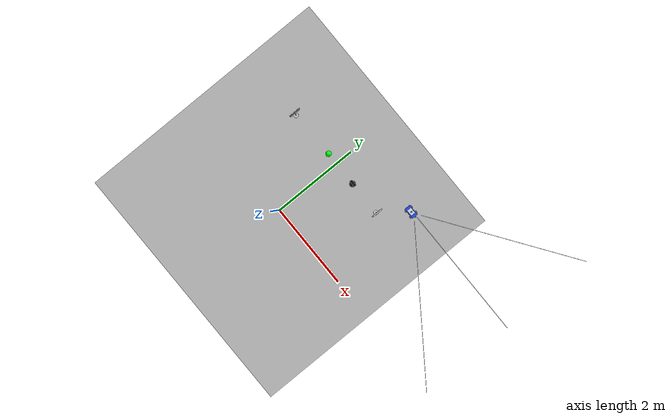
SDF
<sdf version="1.7">
 <world name="autonomous_map_3d_world">
  <model name="autonomous_map_3d">
   <static>1</static>
   <link name="map_link">
    <visual name="textured_map_visual">
     <geometry>
      <mesh><uri>model://autonomous_map_3d/meshes/autonomous_map_3d.dae</uri><scale>-1.0 1.0 1.0</scale></mesh>
     </geometry>
    </visual>
    <collision name="floor_collision">
     <pose>0 0 -0.01 0 -0 0</pose>
     <geometry><box><size>6 6 0.02</size></box></geometry>
    </collision>
   </link>
   <pose>0 0.3 0 0 -0 0</pose>
  </model>
  <model name="traffic_light_top_island">
   <static>1</static>
   <link name="traffic_light_link">
    <visual name="base_visual">
     <pose>0 0 0.015 0 -0 0</pose>
     <geometry><cylinder><radius>0.07</radius><length>0.03</length></cylinder></geometry>
     <material><ambient>0.03 0.03 0.04 1</ambient><diffuse>0.04 0.04 0.05 1</diffuse></material>
    </visual>
    <visual name="pole_visual">
     <pose>0 0 0.25 0 -0 0</pose>
     <geometry><cylinder><radius>0.016</radius><length>0.47</length></cylinder></geometry>
     <material><ambient>0.08 0.08 0.1 1</ambient><diffuse>0.1 0.1 0.13 1</diffuse></material>
    </visual>
    <visual name="housing_visual">
     <pose>0 -0.006 0.565 0 -0 0</pose>
     <geometry><box><size>0.145 0.055 0.34</size></box></geometry>
     <material><ambient>0.02 0.025 0.04 1</ambient><diffuse>0.03 0.035 0.06 1</diffuse></material>
    </visual>
    <visual name="red_lens_visual">
     <pose>0 -0.038 0.66 0 -0 0</pose>
     <geometry><sphere><radius>0.043</radius></sphere></geometry>
     <material>
      <ambient>0.035 0.002 0.002 1</ambient>
      <diffuse>0.06 0.004 0.004 1</diffuse>
      <emissive>0 0 0 1</emissive>
     </material>
    </visual>
    <visual name="yellow_lens_visual">
     <pose>0 -0.038 0.565 0 -0 0</pose>
     <geometry><sphere><radius>0.043</radius></sphere></geometry>
     <material>
      <ambient>0.035 0.025 0.002 1</ambient>
      <diffuse>0.06 0.045 0.004 1</diffuse>
      <emissive>0 0 0 1</emissive>
     </material>
    </visual>
    <visual name="green_lens_visual">
     <pose>0 -0.038 0.47 0 -0 0</pose>
     <geometry><sphere><radius>0.043</radius></sphere></geometry>
     <material>
      <ambient>0.002 0.04 0.004 1</ambient>
      <diffuse>0.004 0.078 0.01 1</diffuse>
      <emissive>0 0 0 1</emissive>
     </material>
    </visual>
   </link>
   <pose>0.562500 1.589100 0.000000 0.000000 -0.000000 -0.000003</pose>
  </model>
  <model name="traffic_light_top_island_green_active_lamp">
   <static>0</static>
   <link name="lamp_link">
    <gravity>0</gravity>
    <visual name="lamp_visual">
     <geometry><sphere><radius>0.065</radius></sphere></geometry>
     <material>
      <ambient>0 1 0.05 1</ambient>
      <diffuse>0 1 0.05 1</diffuse>
      <emissive>0 0.0313726 0.3 1</emissive>
     </material>
    </visual>
    <kinematic>1</kinematic>
    <inertial>
     <inertia><ixx>1</ixx><ixy>0</ixy><ixz>0</ixz><iyy>1</iyy><iyz>0</iyz><izz>1</izz></inertia>
     <mass>1</mass>
    </inertial>
   </link>
   <pose>-0.241400 1.589700 0.470000 0.000000 -0.000000 3.141593</pose>
  </model>
  <model name="sign_go_straight_top_island">
   <static>1</static>
   <link name="sign_link">
    <visual name="base_visual">
     <pose>0 0 0.01 0 -0 0</pose>
     <geometry><cylinder><radius>0.055</radius><length>0.02</length></cylinder></geometry>
     <material><ambient>0.72 0.72 0.7 1</ambient><diffuse>0.78 0.78 0.76 1</diffuse></material>
    </visual>
    <visual name="pole_visual">
     <pose>0 0 0.245 0 -0 0</pose>
     <geometry><cylinder><radius>0.011</radius><length>0.47</length></cylinder></geometry>
     <material><ambient>0.72 0.72 0.7 1</ambient><diffuse>0.82 0.82 0.8 1</diffuse></material>
    </visual>
    <visual name="back_plate_visual">
     <pose>0 0 0.52 0 -0 0</pose>
     <geometry><box><size>0.26 0.014 0.26</size></box></geometry>
     <material><ambient>0.96 0.96 0.94 1</ambient><diffuse>0.98 0.98 0.96 1</diffuse></material>
    </visual>
    <visual name="sign_face_visual">
     <pose>0 -0.011 0.52 0 -0 0</pose>
     <geometry><box><size>0.246 0.004 0.246</size></box></geometry>
     <material>
      <script>
       <uri>model://road_sign_go_straight/materials/scripts</uri>
       <uri>model://road_sign_go_straight/materials/textures</uri>
       <name>RoadSign/GoStraight</name>
      </script>
     </material>
    </visual>
   </link>
   <pose>1.359400 1.589100 0.000000 0.000000 -0.000000 1.570793</pose>
  </model>
  <model name="sign_turn_right_top_right_island">
   <static>1</static>
   <link name="sign_link">
    <visual name="base_visual">
     <pose>0 0 0.01 0 -0 0</pose>
     <geometry><cylinder><radius>0.055</radius><length>0.02</length></cylinder></geometry>
     <material><ambient>0.72 0.72 0.7 1</ambient><diffuse>0.78 0.78 0.76 1</diffuse></material>
    </visual>
    <visual name="pole_visual">
     <pose>0 0 0.245 0 -0 0</pose>
     <geometry><cylinder><radius>0.011</radius><length>0.47</length></cylinder></geometry>
     <material><ambient>0.72 0.72 0.7 1</ambient><diffuse>0.82 0.82 0.8 1</diffuse></material>
    </visual>
    <visual name="back_plate_visual">
     <pose>0 0 0.52 0 -0 0</pose>
     <geometry><box><size>0.26 0.014 0.26</size></box></geometry>
     <material><ambient>0.96 0.96 0.94 1</ambient><diffuse>0.98 0.98 0.96 1</diffuse></material>
    </visual>
    <visual name="sign_face_visual">
     <pose>0 -0.011 0.52 0 -0 0</pose>
     <geometry><box><size>0.246 0.004 0.246</size></box></geometry>
     <material>
      <script>
       <uri>model://road_sign_turn_right/materials/scripts</uri>
       <uri>model://road_sign_turn_right/materials/textures</uri>
       <name>RoadSign/TurnRight</name>
      </script>
     </material>
    </visual>
   </link>
   <pose>-1.359400 1.589100 0.000000 0.000000 -0.000000 1.570793</pose>
  </model>
  <model name="track_preview_car">
   <static>0</static>
   <allow_auto_disable>0</allow_auto_disable>
   <link name="body">
    <inertial>
     <mass>1</mass>
     <inertia><ixx>0.01</ixx><iyy>0.01</iyy><izz>0.01</izz><ixy>0</ixy><ixz>0</ixz><iyz>0</iyz></inertia>
    </inertial>
    <visual name="chassis_visual">
     <pose>0 0 0.065 0 -0 0</pose>
     <geometry><box><size>0.26 0.14 0.055</size></box></geometry>
     <material>
      <ambient>0.08 0.2 0.7 1</ambient>
      <diffuse>0.12 0.28 0.88 1</diffuse>
      <specular>0.1 0.1 0.1 1</specular>
     </material>
    </visual>
    <visual name="roof_visual">
     <pose>-0.005 0 0.115 0 -0 0</pose>
     <geometry><box><size>0.14 0.105 0.045</size></box></geometry>
     <material>
      <ambient>0.65 0.78 0.95 0.92</ambient>
      <diffuse>0.75 0.86 0.98 0.92</diffuse>
      <specular>0.1 0.1 0.1 1</specular>
     </material>
    </visual>
    <visual name="front_marker_visual">
     <pose>0.105 0 0.083 0 -0 0</pose>
     <geometry><box><size>0.025 0.075 0.018</size></box></geometry>
     <material>
      <ambient>1 0.85 0.2 1</ambient>
      <diffuse>1 0.88 0.25 1</diffuse>
      <specular>0.05 0.05 0.05 1</specular>
     </material>
    </visual>
    <visual name="camera_lens_visual">
     <pose>0.138 0 0.126 0 -0 0</pose>
     <geometry><box><size>0.016 0.04 0.022</size></box></geometry>
     <material>
      <ambient>0.02 0.02 0.025 1</ambient>
      <diffuse>0.04 0.04 0.05 1</diffuse>
      <specular>0.05 0.05 0.05 1</specular>
     </material>
    </visual>
    <visual name="camera_view_left_ray_visual">
     <pose>1.67 1.15 0.335 -0 0.0505 0.6109</pose>
     <geometry><box><size>3.68 0.008 0.008</size></box></geometry>
     <material>
      <ambient>0.85 1 1 0.82</ambient>
      <diffuse>0.85 1 1 0.82</diffuse>
      <emissive>0.2 0.55 0.75 1</emissive>
     </material>
    </visual>
    <visual name="camera_view_center_ray_visual">
     <pose>1.67 0 0.335 0 0.0555 0</pose>
     <geometry><box><size>3.0647 0.008 0.008</size></box></geometry>
     <material>
      <ambient>0.85 1 1 0.82</ambient>
      <diffuse>0.85 1 1 0.82</diffuse>
      <emissive>0.2 0.55 0.75 1</emissive>
     </material>
    </visual>
    <visual name="camera_view_right_ray_visual">
     <pose>1.67 -1.15 0.335 0 0.0505 -0.6109</pose>
     <geometry><box><size>3.68 0.008 0.008</size></box></geometry>
     <material>
      <ambient>0.85 1 1 0.82</ambient>
      <diffuse>0.85 1 1 0.82</diffuse>
      <emissive>0.2 0.55 0.75 1</emissive>
     </material>
    </visual>
    <visual name="debug_origin_marker_visual">
     <pose>0 0 0.165 0 -0 0</pose>
     <geometry><sphere><radius>0.018</radius></sphere></geometry>
     <material>
      <ambient>1 0.02 0.02 1</ambient>
      <diffuse>1 0.04 0.04 1</diffuse>
      <specular>0.08 0.08 0.08 1</specular>
     </material>
    </visual>
    <visual name="debug_ground_origin_visual">
     <pose>0 0 -0.017 0 -0 0</pose>
     <geometry><cylinder><radius>0.018</radius><length>0.004</length></cylinder></geometry>
     <material>
      <ambient>1 0.02 0.02 1</ambient>
      <diffuse>1 0.04 0.04 1</diffuse>
      <specular>0.08 0.08 0.08 1</specular>
     </material>
    </visual>
    <visual name="debug_ground_footprint_front_visual">
     <pose>0.165 0 -0.017 0 -0 0</pose>
     <geometry><box><size>0.008 0.238 0.004</size></box></geometry>
     <material>
      <ambient>0 0.7 1 1</ambient>
      <diffuse>0.05 0.86 1 1</diffuse>
      <specular>0.02 0.02 0.02 1</specular>
     </material>
    </visual>
    <visual name="debug_ground_footprint_rear_visual">
     <pose>-0.145 0 -0.017 0 -0 0</pose>
     <geometry><box><size>0.008 0.238 0.004</size></box></geometry>
     <material>
      <ambient>0 0.7 1 1</ambient>
      <diffuse>0.05 0.86 1 1</diffuse>
      <specular>0.02 0.02 0.02 1</specular>
     </material>
    </visual>
    <visual name="debug_ground_footprint_left_visual">
     <pose>0.01 0.115 -0.017 0 -0 0</pose>
     <geometry><box><size>0.318 0.008 0.004</size></box></geometry>
     <material>
      <ambient>0 0.7 1 1</ambient>
      <diffuse>0.05 0.86 1 1</diffuse>
      <specular>0.02 0.02 0.02 1</specular>
     </material>
    </visual>
    <visual name="debug_ground_footprint_right_visual">
     <pose>0.01 -0.115 -0.017 0 -0 0</pose>
     <geometry><box><size>0.318 0.008 0.004</size></box></geometry>
     <material>
      <ambient>0 0.7 1 1</ambient>
      <diffuse>0.05 0.86 1 1</diffuse>
      <specular>0.02 0.02 0.02 1</specular>
     </material>
    </visual>
    <visual name="rear_left_dummy_wheel_visual">
     <pose>-0.08 0.085 0.032 1.5708 -0 0</pose>
     <geometry><cylinder><radius>0.028</radius><length>0.016</length></cylinder></geometry>
     <material>
      <ambient>0.03 0.03 0.03 1</ambient>
      <diffuse>0.07 0.07 0.07 1</diffuse>
      <specular>0.02 0.02 0.02 1</specular>
     </material>
    </visual>
    <visual name="rear_right_dummy_wheel_visual">
     <pose>-0.08 -0.085 0.032 1.5708 -0 0</pose>
     <geometry><cylinder><radius>0.028</radius><length>0.016</length></cylinder></geometry>
     <material>
      <ambient>0.03 0.03 0.03 1</ambient>
      <diffuse>0.07 0.07 0.07 1</diffuse>
      <specular>0.02 0.02 0.02 1</specular>
     </material>
    </visual>
    <collision name="rear_left_caster_collision">
     <pose>-0.095 0.072 0.026 0 -0 0</pose>
     <geometry><sphere><radius>0.024</radius></sphere></geometry>
     <surface><friction><ode><mu>0.05</mu><mu2>0.05</mu2></ode></friction></surface>
    </collision>
    <collision name="rear_right_caster_collision">
     <pose>-0.095 -0.072 0.026 0 -0 0</pose>
     <geometry><sphere><radius>0.024</radius></sphere></geometry>
     <surface><friction><ode><mu>0.05</mu><mu2>0.05</mu2></ode></friction></surface>
    </collision>
    <collision name="body_collision">
     <pose>0 0 0.065 0 -0 0</pose>
     <geometry><box><size>0.26 0.14 0.05</size></box></geometry>
    </collision>
    <sensor name="front_camera" type="camera">
     <pose>0.14 0 0.42 0 0.18 0</pose>
     <always_on>1</always_on>
     <update_rate>30</update_rate>
     <visualize>0</visualize>
     <camera>
      <horizontal_fov>2.45</horizontal_fov>
      <image><width>960</width><height>540</height><format>R8G8B8</format></image>
      <clip><near>0.02</near><far>6</far></clip>
     </camera>
     <plugin name="front_camera_controller" filename="libgazebo_ros_camera.so">
      <ros>
       <namespace>/track_preview_car</namespace>
       <remapping>image_raw:=image_raw</remapping>
       <remapping>camera_info:=camera_info</remapping>
      </ros>
      <camera_name>camera</camera_name>
      <frame_name>track_preview_car/front_camera</frame_name>
     </plugin>
    </sensor>
   </link>
   <link name="left_wheel">
    <pose>0.08 0.088 0.032 0 -0 0</pose>
    <inertial>
     <mass>0.08</mass>
     <inertia><ixx>5e-05</ixx><iyy>8e-05</iyy><izz>5e-05</izz><ixy>0</ixy><ixz>0</ixz><iyz>0</iyz></inertia>
    </inertial>
    <visual name="left_wheel_visual">
     <pose>0 0 0 1.5708 -0 0</pose>
     <geometry><cylinder><radius>0.03</radius><length>0.02</length></cylinder></geometry>
     <material>
      <ambient>0.03 0.03 0.03 1</ambient>
      <diffuse>0.07 0.07 0.07 1</diffuse>
      <specular>0.02 0.02 0.02 1</specular>
     </material>
    </visual>
    <collision name="left_wheel_collision">
     <pose>0 0 0 1.5708 -0 0</pose>
     <geometry><cylinder><radius>0.03</radius><length>0.02</length></cylinder></geometry>
     <surface><friction><ode><mu>1.2</mu><mu2>1.2</mu2></ode></friction></surface>
    </collision>
   </link>
   <link name="right_wheel">
    <pose>0.08 -0.088 0.032 0 -0 0</pose>
    <inertial>
     <mass>0.08</mass>
     <inertia><ixx>5e-05</ixx><iyy>8e-05</iyy><izz>5e-05</izz><ixy>0</ixy><ixz>0</ixz><iyz>0</iyz></inertia>
    </inertial>
    <visual name="right_wheel_visual">
     <pose>0 0 0 1.5708 -0 0</pose>
     <geometry><cylinder><radius>0.03</radius><length>0.02</length></cylinder></geometry>
     <material>
      <ambient>0.03 0.03 0.03 1</ambient>
      <diffuse>0.07 0.07 0.07 1</diffuse>
      <specular>0.02 0.02 0.02 1</specular>
     </material>
    </visual>
    <collision name="right_wheel_collision">
     <pose>0 0 0 1.5708 -0 0</pose>
     <geometry><cylinder><radius>0.03</radius><length>0.02</length></cylinder></geometry>
     <surface><friction><ode><mu>1.2</mu><mu2>1.2</mu2></ode></friction></surface>
    </collision>
   </link>
   <joint name="left_wheel_joint" type="revolute">
    <parent>body</parent>
    <child>left_wheel</child>
    <axis>
     <xyz>0 1 0</xyz>
     <limit><lower>-1e+16</lower><upper>1e+16</upper></limit>
     <dynamics><spring_reference>0</spring_reference><spring_stiffness>0</spring_stiffness></dynamics>
    </axis>
   </joint>
   <joint name="right_wheel_joint" type="revolute">
    <parent>body</parent>
    <child>right_wheel</child>
    <axis>
     <xyz>0 1 0</xyz>
     <limit><lower>-1e+16</lower><upper>1e+16</upper></limit>
     <dynamics><spring_reference>0</spring_reference><spring_stiffness>0</spring_stiffness></dynamics>
    </axis>
   </joint>
   <plugin name="track_preview_car_diff_drive" filename="libgazebo_ros_diff_drive.so">
    <ros>
     <namespace>/track_preview_car</namespace>
     <remapping>cmd_vel:=cmd_vel</remapping>
     <remapping>odom:=odom</remapping>
    </ros>
    <left_joint>left_wheel_joint</left_joint>
    <right_joint>right_wheel_joint</right_joint>
    <wheel_separation>0.176</wheel_separation>
    <wheel_diameter>0.06</wheel_diameter>
    <max_wheel_torque>2.0</max_wheel_torque>
    <max_wheel_acceleration>8.0</max_wheel_acceleration>
    <odometry_frame>odom</odometry_frame>
    <robot_base_frame>body</robot_base_frame>
    <publish_odom>1</publish_odom>
    <publish_odom_tf>0</publish_odom_tf>
    <publish_wheel_tf>0</publish_wheel_tf>
    <update_rate>50</update_rate>
   </plugin>
   <pose>1.828120 2.179690 -0.002000 0.000000 -0.000000 0.000003</pose>
  </model>
 </world>
</sdf>
